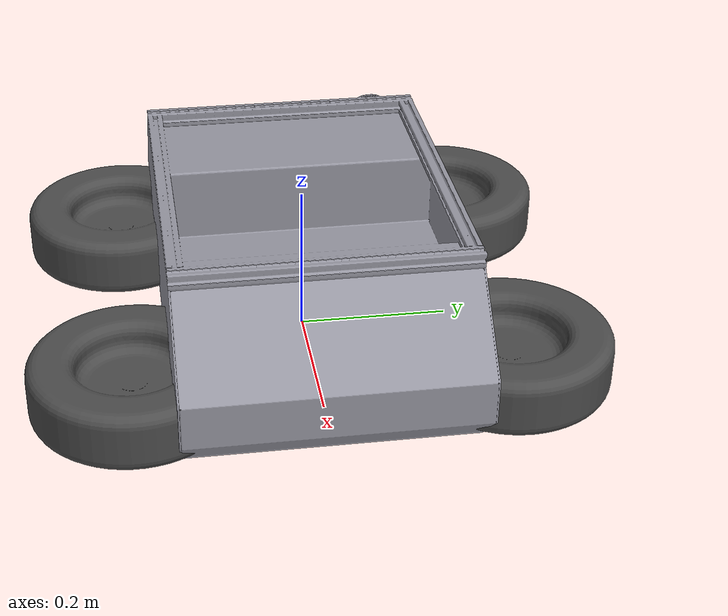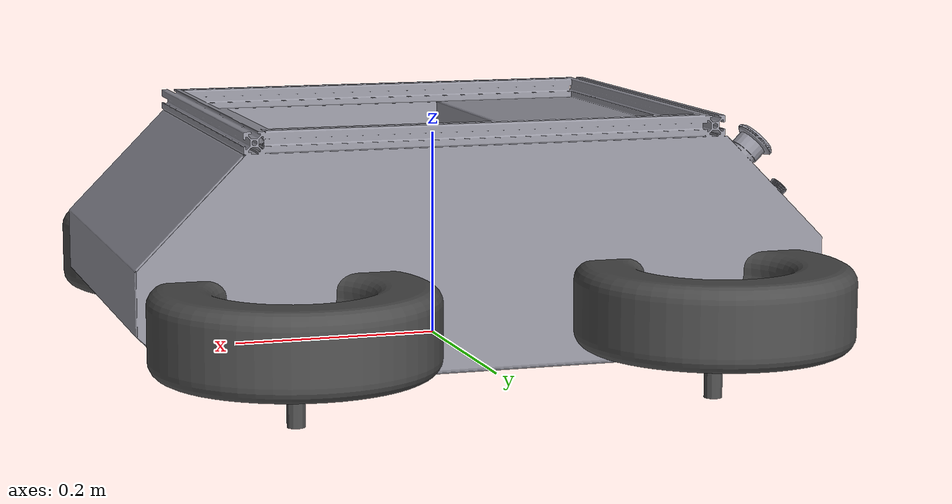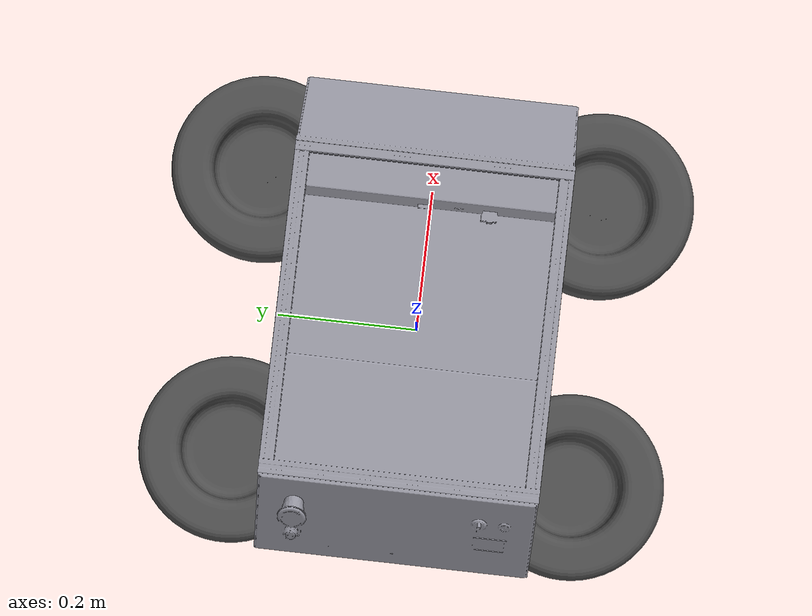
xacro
<?xml version="1.0" encoding="utf-8"?>

<robot name="scholar_base" xmlns:xacro="http://ros.org/wiki/xacro">

  <xacro:arg name="robot_namespace" default="/" />
  <xacro:property name="wheel_length" value="0.07" />
  <xacro:property name="wheel_radius" value="0.1325" />

  <link
    name="base_link">
    <inertial>
      <origin
        xyz="-0.0030686 7.3376E-05 0.097156"
        rpy="0 0 0" />
      <mass
        value="12.503" />
      <inertia
        ixx="0.33952"
        ixy="0.00072408"
        ixz="0.0082636"
        iyy="0.53411"
        iyz="9.4623E-06"
        izz="0.70959" />
    </inertial>
    <visual>
      <origin
        xyz="0 0 0"
        rpy="0 0 0" />
      <geometry>
        <mesh
          filename="package://scholar_base_description/meshes/base_link.STL" />
      </geometry>
      <material
        name="">
        <color
          rgba="0.58824 0.58824 0.63137 1" />
      </material>
    </visual>
    <collision>
      <origin
        xyz="0 0 0"
        rpy="0 0 0" />
      <geometry>
        <mesh
          filename="package://scholar_base_description/meshes/base_link.STL" />
      </geometry>
    </collision>
  </link>
  <link
    name="left_front_wheel_link">
    <inertial>
      <origin
        xyz="1.0808E-09 -1.6734E-09 8.7966E-05"
        rpy="0 0 0" />
      <mass
        value="9.9258" />
      <inertia
        ixx="0.061339"
        ixy="1.6243E-11"
        ixz="1.921E-10"
        iyy="0.061339"
        iyz="-2.072E-10"
        izz="0.10764" />
    </inertial>
    <visual>
      <origin
        xyz="0 0 0"
        rpy="0 0 0" />
      <geometry>
        <mesh
          filename="package://scholar_base_description/meshes/left_front_wheel_link.STL" />
      </geometry>
      <material
        name="">
        <color
          rgba="0.29804 0.29804 0.29804 1" />
      </material>
    </visual>
    <collision>
      <origin
        xyz="0 0 0"
        rpy="0 0 0" />
      <geometry>
	<cylinder length="${wheel_length}" radius="${wheel_radius}" />
        <!--mesh
          filename="package://scholar_base_description/meshes/left_front_wheel_link.STL" /-->
      </geometry>
    </collision>
  </link>
  <joint
    name="left_front_wheel_joint"
    type="continuous">
    <origin
      xyz="0.199 0.2387 0.06"
      rpy="1.5708 0 0" />
    <parent
      link="base_link" />
    <child
      link="left_front_wheel_link" />
    <axis
      xyz="0 0 -1" />
  </joint>

  <gazebo reference="left_front_wheel_link">
        <mu1 value="1.0"/>
        <mu2 value="1.0"/>
	<kp value="10000000.0" />
	<kd value="1.0" />
	<fdir1 value="0 0 -1"/>
  </gazebo>

  <transmission name="left_front_wheel_trans" type="SimpleTransmission">
	<type>transmission_interface/SimpleTransmission</type>
	<actuator name="left_front_wheel_motor">
		<mechanicalReduction>1</mechanicalReduction>
	</actuator>
	<joint name="left_front_wheel_joint">
		<hardwareInterface>hardware_interface/VelocityJointInterface</hardwareInterface>
	</joint>
  </transmission>

  <link
    name="left_rear_wheel_link">
    <inertial>
      <origin
        xyz="1.0801E-09 -1.6734E-09 8.7966E-05"
        rpy="0 0 0" />
      <mass
        value="9.9258" />
      <inertia
        ixx="0.061339"
        ixy="1.6318E-11"
        ixz="1.9201E-10"
        iyy="0.061339"
        iyz="-2.072E-10"
        izz="0.10764" />
    </inertial>
    <visual>
      <origin
        xyz="0 0 0"
        rpy="0 0 0" />
      <geometry>
        <mesh
          filename="package://scholar_base_description/meshes/left_rear_wheel_link.STL" />
      </geometry>
      <material
        name="">
        <color
          rgba="0.29804 0.29804 0.29804 1" />
      </material>
    </visual>
    <collision>
      <origin
        xyz="0 0 0"
        rpy="0 0 0" />
      <geometry>
	<cylinder length="${wheel_length}" radius="${wheel_radius}" />
        <!--mesh
          filename="package://scholar_base_description/meshes/left_rear_wheel_link.STL" /-->
      </geometry>
    </collision>
  </link>
  <joint
    name="left_rear_wheel_joint"
    type="continuous">
    <origin
      xyz="-0.199 0.2387 0.06"
      rpy="1.5708 0 0" />
    <parent
      link="base_link" />
    <child
      link="left_rear_wheel_link" />
    <axis
      xyz="0 0 -1" />
    <!--mimic
      joint="left_front_wheel_joint"
      multiplier="1"
      offset="0" /-->
  </joint>

  <gazebo reference="left_rear_wheel_link">
        <mu1 value="1.0"/>
        <mu2 value="1.0"/>
	<kp value="10000000.0" />
	<kd value="1.0" />
	<fdir1 value="0 0 -1"/>
  </gazebo>

  <transmission name="left_rear_wheel_trans" type="SimpleTransmission">
	<type>transmission_interface/SimpleTransmission</type>
	<actuator name="left_rear_wheel_motor">
		<mechanicalReduction>1</mechanicalReduction>
	</actuator>
	<joint name="left_rear_wheel_joint">
		<hardwareInterface>hardware_interface/VelocityJointInterface</hardwareInterface>
	</joint>
  </transmission>

  <link
    name="right_front_wheel_link">
    <inertial>
      <origin
        xyz="-1.0802E-09 1.6735E-09 8.7966E-05"
        rpy="0 0 0" />
      <mass
        value="9.9258" />
      <inertia
        ixx="0.061339"
        ixy="1.6319E-11"
        ixz="-1.9201E-10"
        iyy="0.061339"
        iyz="2.0721E-10"
        izz="0.10764" />
    </inertial>
    <visual>
      <origin
        xyz="0 0 0"
        rpy="0 0 0" />
      <geometry>
        <mesh
          filename="package://scholar_base_description/meshes/right_front_wheel_link.STL" />
      </geometry>
      <material
        name="">
        <color
          rgba="0.29804 0.29804 0.29804 1" />
      </material>
    </visual>
    <collision>
      <origin
        xyz="0 0 0"
        rpy="0 0 0" />
      <geometry>
	<cylinder length="${wheel_length}" radius="${wheel_radius}" />
        <!--mesh
          filename="package://scholar_base_description/meshes/right_front_wheel_link.STL" /-->
      </geometry>
    </collision>
  </link>
  <joint
    name="right_front_wheel_joint"
    type="continuous">
    <origin
      xyz="0.199 -0.2387 0.06"
      rpy="-1.5708 0 0" />
    <parent
      link="base_link" />
    <child
      link="right_front_wheel_link" />
    <axis
      xyz="0 0 1" />
  </joint>

  <gazebo reference="right_front_wheel_link">
        <mu1 value="1.0"/>
        <mu2 value="1.0"/>
	<kp value="10000000.0" />
	<kd value="1.0" />
	<fdir1 value="0 0 1"/>
  </gazebo>

  <transmission name="right_front_wheel_trans" type="SimpleTransmission">
	<type>transmission_interface/SimpleTransmission</type>
	<actuator name="right_front_wheel_motor">
		<mechanicalReduction>1</mechanicalReduction>
	</actuator>
	<joint name="right_front_wheel_joint">
		<hardwareInterface>hardware_interface/VelocityJointInterface</hardwareInterface>
	</joint>
  </transmission>

  <link
    name="right_rear_wheel_link">
    <inertial>
      <origin
        xyz="-1.0809E-09 1.6733E-09 8.7966E-05"
        rpy="0 0 0" />
      <mass
        value="9.9258" />
      <inertia
        ixx="0.061339"
        ixy="1.6149E-11"
        ixz="-1.9212E-10"
        iyy="0.061339"
        iyz="2.0719E-10"
        izz="0.10764" />
    </inertial>
    <visual>
      <origin
        xyz="0 0 0"
        rpy="0 0 0" />
      <geometry>
        <mesh
          filename="package://scholar_base_description/meshes/right_rear_wheel_link.STL" />
      </geometry>
      <material
        name="">
        <color
          rgba="0.29804 0.29804 0.29804 1" />
      </material>
    </visual>
    <collision>
      <origin
        xyz="0 0 0"
        rpy="0 0 0" />
      <geometry>
	<cylinder length="${wheel_length}" radius="${wheel_radius}" />
        <!--mesh
          filename="package://scholar_base_description/meshes/right_rear_wheel_link.STL" /-->
      </geometry>
    </collision>
  </link>
  <joint
    name="right_rear_wheel_joint"
    type="continuous">
    <origin
      xyz="-0.199 -0.2387 0.06"
      rpy="-1.5708 0 0" />
    <parent
      link="base_link" />
    <child
      link="right_rear_wheel_link" />
    <axis
      xyz="0 0 1" />
    <!--mimic
      joint="right_front_wheel_joint"
      multiplier="1"
      offset="0" /-->
  </joint>

  <gazebo reference="right_rear_wheel_link">
        <mu1 value="1.0"/>
        <mu2 value="1.0"/>
	<kp value="10000000.0" />
	<kd value="1.0" />
	<fdir1 value="0 0 1"/>
  </gazebo>

  <transmission name="right_rear_wheel_trans" type="SimpleTransmission">
	<type>transmission_interface/SimpleTransmission</type>
	<actuator name="right_rear_wheel_motor">
		<mechanicalReduction>1</mechanicalReduction>
	</actuator>
	<joint name="right_rear_wheel_joint">
		<hardwareInterface>hardware_interface/VelocityJointInterface</hardwareInterface>
	</joint>
  </transmission>

  <link
    name="imu_link">
  </link>
  <joint
    name="imu_joint"
    type="fixed">
    <origin
      xyz="0.2055 -0.008 0.012"
      rpy="0 0 0" />
    <parent
      link="base_link" />
    <child
      link="imu_link" />
    <axis
      xyz="0 0 0" />
  </joint>
  <link
    name="top_plate_link">
  </link>
  <joint
    name="top_plate_joint"
    type="fixed">
    <origin
      xyz="0 0 0.23019"
      rpy="0 0 0" />
    <parent
      link="base_link" />
    <child
      link="top_plate_link" />
    <axis
      xyz="0 0 0" />
  </joint>

  <gazebo>
    <plugin name="gazebo_ros_control" filename="libgazebo_ros_control.so">
      <robotNamespace>$(arg robot_namespace)</robotNamespace>
      <legacyModeNS>true</legacyModeNS>
    </plugin>
  </gazebo>

  <gazebo>
    <plugin name="imu_controller" filename="libhector_gazebo_ros_imu.so">
      <robotNamespace>$(arg robot_namespace)</robotNamespace>
      <updateRate>50.0</updateRate>
      <bodyName>imu_link</bodyName>
      <topicName>imu/data</topicName>
      <accelDrift>0.005 0.005 0.005</accelDrift>
      <accelGaussianNoise>0.005 0.005 0.005</accelGaussianNoise>
      <rateDrift>0.005 0.005 0.005 </rateDrift>
      <rateGaussianNoise>0.005 0.005 0.005 </rateGaussianNoise>
      <headingDrift>0.005</headingDrift>
      <headingGaussianNoise>0.005</headingGaussianNoise>
    </plugin>
  </gazebo>

</robot>
